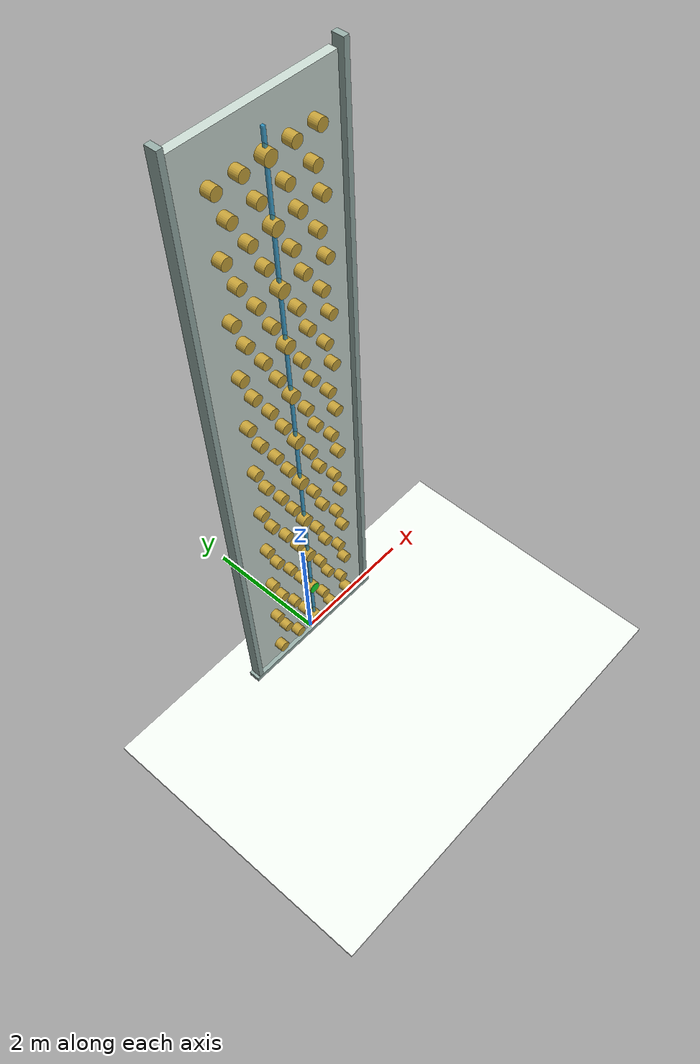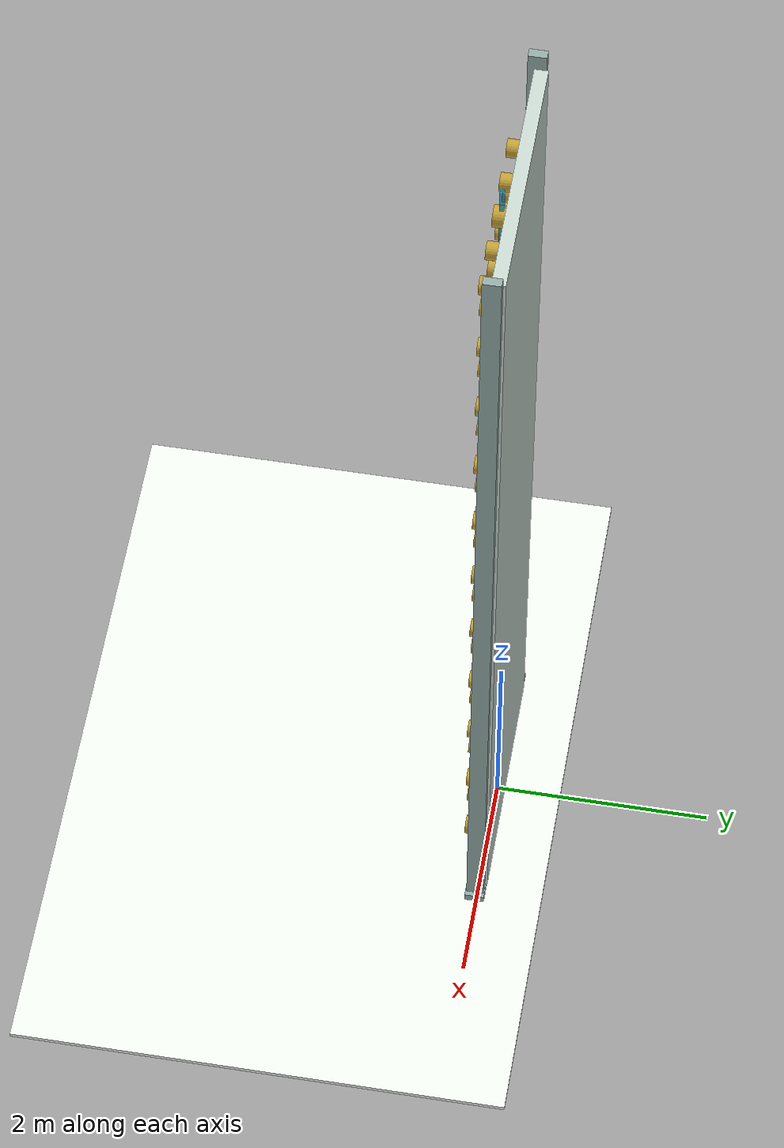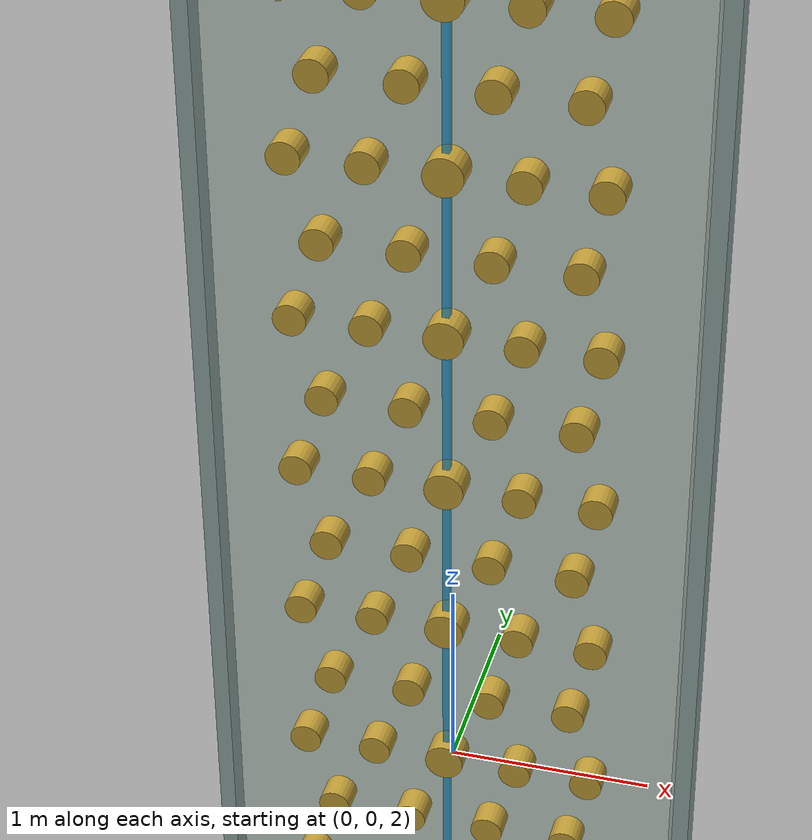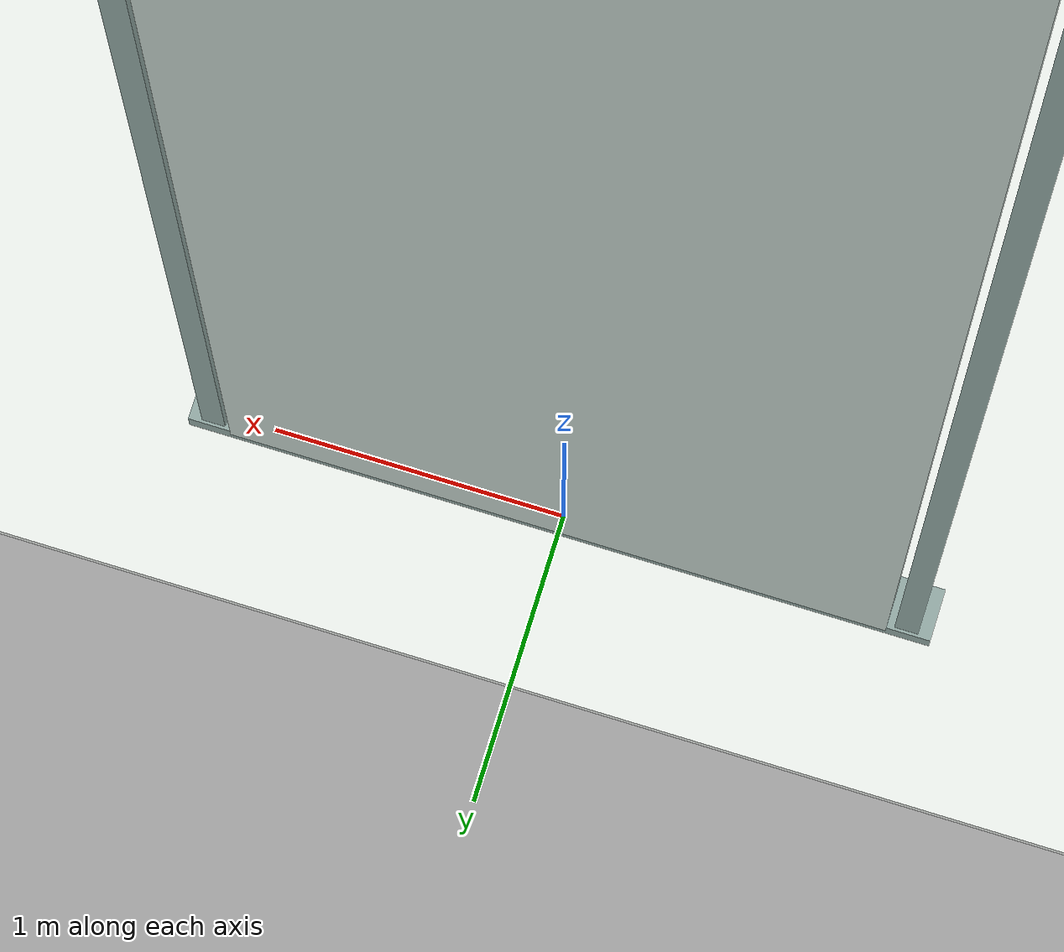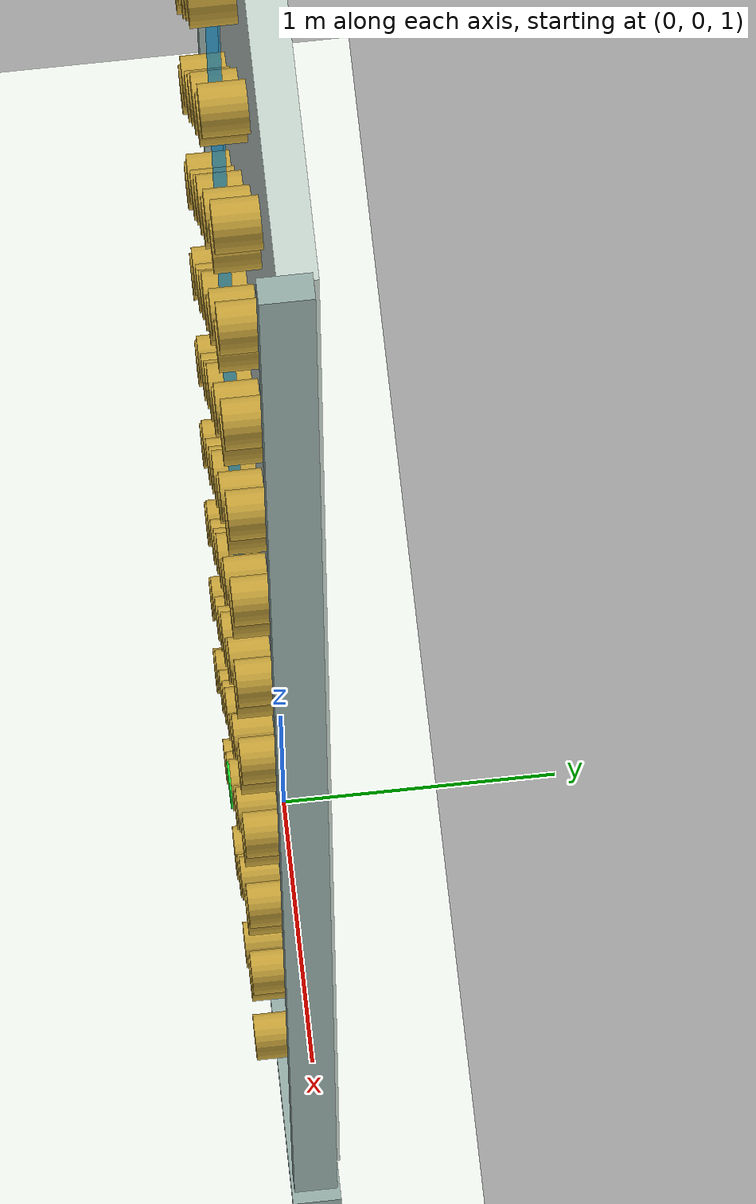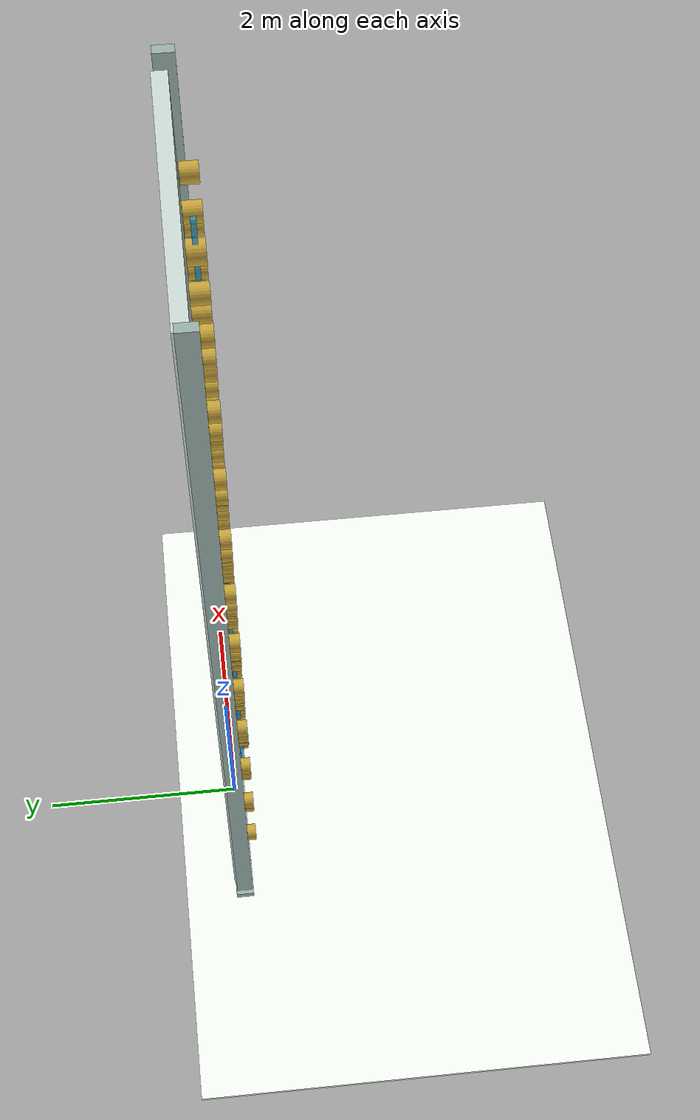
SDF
<sdf version="1.6">
 <world name="geckogrip_climber">
  <gravity>0 0 -9.81</gravity>
  <physics name="default_physics" type="ode">
   <max_step_size>0.001</max_step_size>
   <real_time_factor>1.0</real_time_factor>
   <real_time_update_rate>1000</real_time_update_rate>
   <ode>
    <solver><type>quick</type><iters>50</iters><sor>1.3</sor></solver>
    <constraints>
     <cfm>0.0</cfm>
     <erp>0.2</erp>
     <contact_max_correcting_vel>100.0</contact_max_correcting_vel>
     <contact_surface_layer>0.001</contact_surface_layer>
    </constraints>
   </ode>
  </physics>
  <scene>
   <ambient>0.72 0.76 0.73 1</ambient>
   <background>0.88 0.92 0.90 1</background>
   <shadows>true</shadows>
  </scene>
  <light name="key_light" type="directional">
   <pose>-4 -7 8 0 0.7 0.45</pose>
   <diffuse>1 1 1 1</diffuse>
   <specular>0.18 0.18 0.18 1</specular>
   <direction>0.45 0.75 -0.75</direction>
  </light>
  <model name="floor">
   <static>true</static>
   <pose>0 -1.7 0 0 0 0</pose>
   <link name="floor_link">
    <collision name="collision"><geometry><box><size>6.8 4.6 0.04</size></box></geometry></collision>
    <visual name="visual">
     <geometry><box><size>6.8 4.6 0.04</size></box></geometry>
     <material><ambient>0.94 0.96 0.94 1</ambient><diffuse>0.94 0.96 0.94 1</diffuse></material>
    </visual>
   </link>
  </model>
  <model name="climbing_wall">
   <static>true</static>
   <pose>0 0.02 4.65 0 0 0</pose>
   <link name="wall_link">
    <collision name="panel_collision"><geometry><box><size>2.25 0.12 9.1</size></box></geometry></collision>
    <visual name="panel_visual">
     <geometry><box><size>2.25 0.12 9.1</size></box></geometry>
     <material><ambient>0.78 0.84 0.81 1</ambient><diffuse>0.78 0.84 0.81 1</diffuse></material>
    </visual>
    <visual name="left_rail">
     <pose>-1.19 -0.04 0 0 0 0</pose>
     <geometry><box><size>0.08 0.16 9.35</size></box></geometry>
     <material><ambient>0.58 0.67 0.65 1</ambient><diffuse>0.58 0.67 0.65 1</diffuse></material>
    </visual>
    <visual name="right_rail">
     <pose>1.19 -0.04 0 0 0 0</pose>
     <geometry><box><size>0.08 0.16 9.35</size></box></geometry>
     <material><ambient>0.58 0.67 0.65 1</ambient><diffuse>0.58 0.67 0.65 1</diffuse></material>
    </visual>
    <visual name="base_rail">
     <pose>0 -0.04 -4.6 0 0 0</pose>
     <geometry><box><size>2.55 0.18 0.1</size></box></geometry>
     <material><ambient>0.58 0.67 0.65 1</ambient><diffuse>0.58 0.67 0.65 1</diffuse></material>
    </visual>
   </link>
  </model>
  <model name="route_and_holds">
   <static>true</static>
   <link name="holds_link">
    <visual name="route_strip">
     <pose>0 -0.12 4.7 0 0 0</pose>
     <geometry><box><size>0.035 0.04 8.55</size></box></geometry>
     <material><ambient>0.12 0.62 0.86 0.75</ambient><diffuse>0.12 0.62 0.86 0.75</diffuse></material>
    </visual>
    <visual name="hold_00">
     <pose>-0.72 -0.12 0.45 1.5708 0 0</pose>
     <geometry><cylinder><radius>0.085</radius><length>0.14</length></cylinder></geometry>
     <material><ambient>0.77 0.63 0.22 1</ambient><diffuse>0.77 0.63 0.22 1</diffuse></material>
    </visual>
    <visual name="hold_01">
     <pose>-0.36 -0.12 0.45 1.5708 0 0</pose>
     <geometry><cylinder><radius>0.085</radius><length>0.14</length></cylinder></geometry>
     <material><ambient>0.77 0.63 0.22 1</ambient><diffuse>0.77 0.63 0.22 1</diffuse></material>
    </visual>
    <visual name="hold_02">
     <pose>0.0 -0.12 0.45 1.5708 0 0</pose>
     <geometry><cylinder><radius>0.1</radius><length>0.14</length></cylinder></geometry>
     <material><ambient>0.77 0.63 0.22 1</ambient><diffuse>0.77 0.63 0.22 1</diffuse></material>
    </visual>
    <visual name="hold_03">
     <pose>0.36 -0.12 0.45 1.5708 0 0</pose>
     <geometry><cylinder><radius>0.085</radius><length>0.14</length></cylinder></geometry>
     <material><ambient>0.77 0.63 0.22 1</ambient><diffuse>0.77 0.63 0.22 1</diffuse></material>
    </visual>
    <visual name="hold_04">
     <pose>0.72 -0.12 0.45 1.5708 0 0</pose>
     <geometry><cylinder><radius>0.085</radius><length>0.14</length></cylinder></geometry>
     <material><ambient>0.77 0.63 0.22 1</ambient><diffuse>0.77 0.63 0.22 1</diffuse></material>
    </visual>
    <visual name="hold_05">
     <pose>-0.58 -0.12 0.86 1.5708 0 0</pose>
     <geometry><cylinder><radius>0.08</radius><length>0.14</length></cylinder></geometry>
     <material><ambient>0.77 0.63 0.22 1</ambient><diffuse>0.77 0.63 0.22 1</diffuse></material>
    </visual>
    <visual name="hold_06">
     <pose>-0.18 -0.12 0.86 1.5708 0 0</pose>
     <geometry><cylinder><radius>0.08</radius><length>0.14</length></cylinder></geometry>
     <material><ambient>0.77 0.63 0.22 1</ambient><diffuse>0.77 0.63 0.22 1</diffuse></material>
    </visual>
    <visual name="hold_07">
     <pose>0.22 -0.12 0.86 1.5708 0 0</pose>
     <geometry><cylinder><radius>0.08</radius><length>0.14</length></cylinder></geometry>
     <material><ambient>0.77 0.63 0.22 1</ambient><diffuse>0.77 0.63 0.22 1</diffuse></material>
    </visual>
    <visual name="hold_08">
     <pose>0.62 -0.12 0.86 1.5708 0 0</pose>
     <geometry><cylinder><radius>0.08</radius><length>0.14</length></cylinder></geometry>
     <material><ambient>0.77 0.63 0.22 1</ambient><diffuse>0.77 0.63 0.22 1</diffuse></material>
    </visual>
    <visual name="hold_09">
     <pose>-0.72 -0.12 1.27 1.5708 0 0</pose>
     <geometry><cylinder><radius>0.08</radius><length>0.14</length></cylinder></geometry>
     <material><ambient>0.77 0.63 0.22 1</ambient><diffuse>0.77 0.63 0.22 1</diffuse></material>
    </visual>
    <visual name="hold_10">
     <pose>-0.36 -0.12 1.27 1.5708 0 0</pose>
     <geometry><cylinder><radius>0.08</radius><length>0.14</length></cylinder></geometry>
     <material><ambient>0.77 0.63 0.22 1</ambient><diffuse>0.77 0.63 0.22 1</diffuse></material>
    </visual>
    <visual name="hold_11">
     <pose>0.0 -0.12 1.27 1.5708 0 0</pose>
     <geometry><cylinder><radius>0.095</radius><length>0.14</length></cylinder></geometry>
     <material><ambient>0.77 0.63 0.22 1</ambient><diffuse>0.77 0.63 0.22 1</diffuse></material>
    </visual>
    <visual name="hold_12">
     <pose>0.36 -0.12 1.27 1.5708 0 0</pose>
     <geometry><cylinder><radius>0.08</radius><length>0.14</length></cylinder></geometry>
     <material><ambient>0.77 0.63 0.22 1</ambient><diffuse>0.77 0.63 0.22 1</diffuse></material>
    </visual>
    <visual name="hold_13">
     <pose>0.72 -0.12 1.27 1.5708 0 0</pose>
     <geometry><cylinder><radius>0.08</radius><length>0.14</length></cylinder></geometry>
     <material><ambient>0.77 0.63 0.22 1</ambient><diffuse>0.77 0.63 0.22 1</diffuse></material>
    </visual>
    <visual name="hold_14">
     <pose>-0.58 -0.12 1.68 1.5708 0 0</pose>
     <geometry><cylinder><radius>0.08</radius><length>0.14</length></cylinder></geometry>
     <material><ambient>0.77 0.63 0.22 1</ambient><diffuse>0.77 0.63 0.22 1</diffuse></material>
    </visual>
    <visual name="hold_15">
     <pose>-0.18 -0.12 1.68 1.5708 0 0</pose>
     <geometry><cylinder><radius>0.08</radius><length>0.14</length></cylinder></geometry>
     <material><ambient>0.77 0.63 0.22 1</ambient><diffuse>0.77 0.63 0.22 1</diffuse></material>
    </visual>
    <visual name="hold_16">
     <pose>0.22 -0.12 1.68 1.5708 0 0</pose>
     <geometry><cylinder><radius>0.08</radius><length>0.14</length></cylinder></geometry>
     <material><ambient>0.77 0.63 0.22 1</ambient><diffuse>0.77 0.63 0.22 1</diffuse></material>
    </visual>
    <visual name="hold_17">
     <pose>0.62 -0.12 1.68 1.5708 0 0</pose>
     <geometry><cylinder><radius>0.08</radius><length>0.14</length></cylinder></geometry>
     <material><ambient>0.77 0.63 0.22 1</ambient><diffuse>0.77 0.63 0.22 1</diffuse></material>
    </visual>
    <visual name="hold_18">
     <pose>-0.72 -0.12 2.09 1.5708 0 0</pose>
     <geometry><cylinder><radius>0.08</radius><length>0.14</length></cylinder></geometry>
     <material><ambient>0.77 0.63 0.22 1</ambient><diffuse>0.77 0.63 0.22 1</diffuse></material>
    </visual>
    <visual name="hold_19">
     <pose>-0.36 -0.12 2.09 1.5708 0 0</pose>
     <geometry><cylinder><radius>0.08</radius><length>0.14</length></cylinder></geometry>
     <material><ambient>0.77 0.63 0.22 1</ambient><diffuse>0.77 0.63 0.22 1</diffuse></material>
    </visual>
    <visual name="hold_20">
     <pose>0.0 -0.12 2.09 1.5708 0 0</pose>
     <geometry><cylinder><radius>0.095</radius><length>0.14</length></cylinder></geometry>
     <material><ambient>0.77 0.63 0.22 1</ambient><diffuse>0.77 0.63 0.22 1</diffuse></material>
    </visual>
    <visual name="hold_21">
     <pose>0.36 -0.12 2.09 1.5708 0 0</pose>
     <geometry><cylinder><radius>0.08</radius><length>0.14</length></cylinder></geometry>
     <material><ambient>0.77 0.63 0.22 1</ambient><diffuse>0.77 0.63 0.22 1</diffuse></material>
    </visual>
    <visual name="hold_22">
     <pose>0.72 -0.12 2.09 1.5708 0 0</pose>
     <geometry><cylinder><radius>0.08</radius><length>0.14</length></cylinder></geometry>
     <material><ambient>0.77 0.63 0.22 1</ambient><diffuse>0.77 0.63 0.22 1</diffuse></material>
    </visual>
    <visual name="hold_23">
     <pose>-0.58 -0.12 2.50 1.5708 0 0</pose>
     <geometry><cylinder><radius>0.08</radius><length>0.14</length></cylinder></geometry>
     <material><ambient>0.77 0.63 0.22 1</ambient><diffuse>0.77 0.63 0.22 1</diffuse></material>
    </visual>
    <visual name="hold_24">
     <pose>-0.18 -0.12 2.50 1.5708 0 0</pose>
     <geometry><cylinder><radius>0.08</radius><length>0.14</length></cylinder></geometry>
     <material><ambient>0.77 0.63 0.22 1</ambient><diffuse>0.77 0.63 0.22 1</diffuse></material>
    </visual>
    <visual name="hold_25">
     <pose>0.22 -0.12 2.50 1.5708 0 0</pose>
     <geometry><cylinder><radius>0.08</radius><length>0.14</length></cylinder></geometry>
     <material><ambient>0.77 0.63 0.22 1</ambient><diffuse>0.77 0.63 0.22 1</diffuse></material>
    </visual>
    <visual name="hold_26">
     <pose>0.62 -0.12 2.50 1.5708 0 0</pose>
     <geometry><cylinder><radius>0.08</radius><length>0.14</length></cylinder></geometry>
     <material><ambient>0.77 0.63 0.22 1</ambient><diffuse>0.77 0.63 0.22 1</diffuse></material>
    </visual>
    <visual name="hold_27">
     <pose>-0.72 -0.12 2.91 1.5708 0 0</pose>
     <geometry><cylinder><radius>0.08</radius><length>0.14</length></cylinder></geometry>
     <material><ambient>0.77 0.63 0.22 1</ambient><diffuse>0.77 0.63 0.22 1</diffuse></material>
    </visual>
    <visual name="hold_28">
     <pose>-0.36 -0.12 2.91 1.5708 0 0</pose>
     <geometry><cylinder><radius>0.08</radius><length>0.14</length></cylinder></geometry>
     <material><ambient>0.77 0.63 0.22 1</ambient><diffuse>0.77 0.63 0.22 1</diffuse></material>
    </visual>
    <visual name="hold_29">
     <pose>0.0 -0.12 2.91 1.5708 0 0</pose>
     <geometry><cylinder><radius>0.095</radius><length>0.14</length></cylinder></geometry>
     <material><ambient>0.77 0.63 0.22 1</ambient><diffuse>0.77 0.63 0.22 1</diffuse></material>
    </visual>
    <visual name="hold_30">
     <pose>0.36 -0.12 2.91 1.5708 0 0</pose>
     <geometry><cylinder><radius>0.08</radius><length>0.14</length></cylinder></geometry>
     <material><ambient>0.77 0.63 0.22 1</ambient><diffuse>0.77 0.63 0.22 1</diffuse></material>
    </visual>
    <visual name="hold_31">
     <pose>0.72 -0.12 2.91 1.5708 0 0</pose>
     <geometry><cylinder><radius>0.08</radius><length>0.14</length></cylinder></geometry>
     <material><ambient>0.77 0.63 0.22 1</ambient><diffuse>0.77 0.63 0.22 1</diffuse></material>
    </visual>
    <visual name="hold_32">
     <pose>-0.58 -0.12 3.32 1.5708 0 0</pose>
     <geometry><cylinder><radius>0.08</radius><length>0.14</length></cylinder></geometry>
     <material><ambient>0.77 0.63 0.22 1</ambient><diffuse>0.77 0.63 0.22 1</diffuse></material>
    </visual>
    <visual name="hold_33">
     <pose>-0.18 -0.12 3.32 1.5708 0 0</pose>
     <geometry><cylinder><radius>0.08</radius><length>0.14</length></cylinder></geometry>
     <material><ambient>0.77 0.63 0.22 1</ambient><diffuse>0.77 0.63 0.22 1</diffuse></material>
    </visual>
    <visual name="hold_34">
     <pose>0.22 -0.12 3.32 1.5708 0 0</pose>
     <geometry><cylinder><radius>0.08</radius><length>0.14</length></cylinder></geometry>
     <material><ambient>0.77 0.63 0.22 1</ambient><diffuse>0.77 0.63 0.22 1</diffuse></material>
    </visual>
    <visual name="hold_35">
     <pose>0.62 -0.12 3.32 1.5708 0 0</pose>
     <geometry><cylinder><radius>0.08</radius><length>0.14</length></cylinder></geometry>
     <material><ambient>0.77 0.63 0.22 1</ambient><diffuse>0.77 0.63 0.22 1</diffuse></material>
    </visual>
    <visual name="hold_36">
     <pose>-0.72 -0.12 3.73 1.5708 0 0</pose>
     <geometry><cylinder><radius>0.08</radius><length>0.14</length></cylinder></geometry>
     <material><ambient>0.77 0.63 0.22 1</ambient><diffuse>0.77 0.63 0.22 1</diffuse></material>
    </visual>
    <visual name="hold_37">
     <pose>-0.36 -0.12 3.73 1.5708 0 0</pose>
     <geometry><cylinder><radius>0.08</radius><length>0.14</length></cylinder></geometry>
     <material><ambient>0.77 0.63 0.22 1</ambient><diffuse>0.77 0.63 0.22 1</diffuse></material>
    </visual>
    <visual name="hold_38">
     <pose>0.0 -0.12 3.73 1.5708 0 0</pose>
     <geometry><cylinder><radius>0.095</radius><length>0.14</length></cylinder></geometry>
     <material><ambient>0.77 0.63 0.22 1</ambient><diffuse>0.77 0.63 0.22 1</diffuse></material>
    </visual>
    <visual name="hold_39">
     <pose>0.36 -0.12 3.73 1.5708 0 0</pose>
     <geometry><cylinder><radius>0.08</radius><length>0.14</length></cylinder></geometry>
     <material><ambient>0.77 0.63 0.22 1</ambient><diffuse>0.77 0.63 0.22 1</diffuse></material>
    </visual>
    <visual name="hold_40">
     <pose>0.72 -0.12 3.73 1.5708 0 0</pose>
     <geometry><cylinder><radius>0.08</radius><length>0.14</length></cylinder></geometry>
     <material><ambient>0.77 0.63 0.22 1</ambient><diffuse>0.77 0.63 0.22 1</diffuse></material>
    </visual>
    <visual name="hold_41">
     <pose>-0.58 -0.12 4.14 1.5708 0 0</pose>
     <geometry><cylinder><radius>0.08</radius><length>0.14</length></cylinder></geometry>
     <material><ambient>0.77 0.63 0.22 1</ambient><diffuse>0.77 0.63 0.22 1</diffuse></material>
    </visual>
    <visual name="hold_42">
     <pose>-0.18 -0.12 4.14 1.5708 0 0</pose>
     <geometry><cylinder><radius>0.08</radius><length>0.14</length></cylinder></geometry>
     <material><ambient>0.77 0.63 0.22 1</ambient><diffuse>0.77 0.63 0.22 1</diffuse></material>
    </visual>
    <visual name="hold_43">
     <pose>0.22 -0.12 4.14 1.5708 0 0</pose>
     <geometry><cylinder><radius>0.08</radius><length>0.14</length></cylinder></geometry>
     <material><ambient>0.77 0.63 0.22 1</ambient><diffuse>0.77 0.63 0.22 1</diffuse></material>
    </visual>
    <visual name="hold_44">
     <pose>0.62 -0.12 4.14 1.5708 0 0</pose>
     <geometry><cylinder><radius>0.08</radius><length>0.14</length></cylinder></geometry>
     <material><ambient>0.77 0.63 0.22 1</ambient><diffuse>0.77 0.63 0.22 1</diffuse></material>
    </visual>
    <visual name="hold_45">
     <pose>-0.72 -0.12 4.55 1.5708 0 0</pose>
     <geometry><cylinder><radius>0.08</radius><length>0.14</length></cylinder></geometry>
     <material><ambient>0.77 0.63 0.22 1</ambient><diffuse>0.77 0.63 0.22 1</diffuse></material>
    </visual>
    <visual name="hold_46">
     <pose>-0.36 -0.12 4.55 1.5708 0 0</pose>
     <geometry><cylinder><radius>0.08</radius><length>0.14</length></cylinder></geometry>
     <material><ambient>0.77 0.63 0.22 1</ambient><diffuse>0.77 0.63 0.22 1</diffuse></material>
    </visual>
    <visual name="hold_47">
     <pose>0.0 -0.12 4.55 1.5708 0 0</pose>
     <geometry><cylinder><radius>0.095</radius><length>0.14</length></cylinder></geometry>
     <material><ambient>0.77 0.63 0.22 1</ambient><diffuse>0.77 0.63 0.22 1</diffuse></material>
    </visual>
    <visual name="hold_48">
     <pose>0.36 -0.12 4.55 1.5708 0 0</pose>
     <geometry><cylinder><radius>0.08</radius><length>0.14</length></cylinder></geometry>
     <material><ambient>0.77 0.63 0.22 1</ambient><diffuse>0.77 0.63 0.22 1</diffuse></material>
    </visual>
    <visual name="hold_49">
     <pose>0.72 -0.12 4.55 1.5708 0 0</pose>
     <geometry><cylinder><radius>0.08</radius><length>0.14</length></cylinder></geometry>
     <material><ambient>0.77 0.63 0.22 1</ambient><diffuse>0.77 0.63 0.22 1</diffuse></material>
    </visual>
    <visual name="hold_50">
     <pose>-0.58 -0.12 4.96 1.5708 0 0</pose>
     <geometry><cylinder><radius>0.08</radius><length>0.14</length></cylinder></geometry>
     <material><ambient>0.77 0.63 0.22 1</ambient><diffuse>0.77 0.63 0.22 1</diffuse></material>
    </visual>
    <visual name="hold_51">
     <pose>-0.18 -0.12 4.96 1.5708 0 0</pose>
     <geometry><cylinder><radius>0.08</radius><length>0.14</length></cylinder></geometry>
     <material><ambient>0.77 0.63 0.22 1</ambient><diffuse>0.77 0.63 0.22 1</diffuse></material>
    </visual>
    <visual name="hold_52">
     <pose>0.22 -0.12 4.96 1.5708 0 0</pose>
     <geometry><cylinder><radius>0.08</radius><length>0.14</length></cylinder></geometry>
     <material><ambient>0.77 0.63 0.22 1</ambient><diffuse>0.77 0.63 0.22 1</diffuse></material>
    </visual>
    <visual name="hold_53">
     <pose>0.62 -0.12 4.96 1.5708 0 0</pose>
     <geometry><cylinder><radius>0.08</radius><length>0.14</length></cylinder></geometry>
     <material><ambient>0.77 0.63 0.22 1</ambient><diffuse>0.77 0.63 0.22 1</diffuse></material>
    </visual>
    <visual name="hold_54">
     <pose>-0.72 -0.12 5.37 1.5708 0 0</pose>
     <geometry><cylinder><radius>0.08</radius><length>0.14</length></cylinder></geometry>
     <material><ambient>0.77 0.63 0.22 1</ambient><diffuse>0.77 0.63 0.22 1</diffuse></material>
    </visual>
    <visual name="hold_55">
     <pose>-0.36 -0.12 5.37 1.5708 0 0</pose>
     <geometry><cylinder><radius>0.08</radius><length>0.14</length></cylinder></geometry>
     <material><ambient>0.77 0.63 0.22 1</ambient><diffuse>0.77 0.63 0.22 1</diffuse></material>
    </visual>
    <visual name="hold_56">
     <pose>0.0 -0.12 5.37 1.5708 0 0</pose>
     <geometry><cylinder><radius>0.095</radius><length>0.14</length></cylinder></geometry>
     <material><ambient>0.77 0.63 0.22 1</ambient><diffuse>0.77 0.63 0.22 1</diffuse></material>
    </visual>
    <visual name="hold_57">
     <pose>0.36 -0.12 5.37 1.5708 0 0</pose>
     <geometry><cylinder><radius>0.08</radius><length>0.14</length></cylinder></geometry>
     <material><ambient>0.77 0.63 0.22 1</ambient><diffuse>0.77 0.63 0.22 1</diffuse></material>
    </visual>
    <visual name="hold_58">
     <pose>0.72 -0.12 5.37 1.5708 0 0</pose>
     <geometry><cylinder><radius>0.08</radius><length>0.14</length></cylinder></geometry>
     <material><ambient>0.77 0.63 0.22 1</ambient><diffuse>0.77 0.63 0.22 1</diffuse></material>
    </visual>
    <visual name="hold_59">
     <pose>-0.58 -0.12 5.78 1.5708 0 0</pose>
     <geometry><cylinder><radius>0.08</radius><length>0.14</length></cylinder></geometry>
     <material><ambient>0.77 0.63 0.22 1</ambient><diffuse>0.77 0.63 0.22 1</diffuse></material>
    </visual>
    <visual name="hold_60">
     <pose>-0.18 -0.12 5.78 1.5708 0 0</pose>
     <geometry><cylinder><radius>0.08</radius><length>0.14</length></cylinder></geometry>
     <material><ambient>0.77 0.63 0.22 1</ambient><diffuse>0.77 0.63 0.22 1</diffuse></material>
    </visual>
    <visual name="hold_61">
     <pose>0.22 -0.12 5.78 1.5708 0 0</pose>
     <geometry><cylinder><radius>0.08</radius><length>0.14</length></cylinder></geometry>
     <material><ambient>0.77 0.63 0.22 1</ambient><diffuse>0.77 0.63 0.22 1</diffuse></material>
    </visual>
    <visual name="hold_62">
     <pose>0.62 -0.12 5.78 1.5708 0 0</pose>
     <geometry><cylinder><radius>0.08</radius><length>0.14</length></cylinder></geometry>
     <material><ambient>0.77 0.63 0.22 1</ambient><diffuse>0.77 0.63 0.22 1</diffuse></material>
    </visual>
    <visual name="hold_63">
     <pose>-0.72 -0.12 6.19 1.5708 0 0</pose>
     <geometry><cylinder><radius>0.08</radius><length>0.14</length></cylinder></geometry>
     <material><ambient>0.77 0.63 0.22 1</ambient><diffuse>0.77 0.63 0.22 1</diffuse></material>
    </visual>
    <visual name="hold_64">
     <pose>-0.36 -0.12 6.19 1.5708 0 0</pose>
     <geometry><cylinder><radius>0.08</radius><length>0.14</length></cylinder></geometry>
     <material><ambient>0.77 0.63 0.22 1</ambient><diffuse>0.77 0.63 0.22 1</diffuse></material>
    </visual>
    <visual name="hold_65">
     <pose>0.0 -0.12 6.19 1.5708 0 0</pose>
     <geometry><cylinder><radius>0.095</radius><length>0.14</length></cylinder></geometry>
     <material><ambient>0.77 0.63 0.22 1</ambient><diffuse>0.77 0.63 0.22 1</diffuse></material>
    </visual>
    <visual name="hold_66">
     <pose>0.36 -0.12 6.19 1.5708 0 0</pose>
     <geometry><cylinder><radius>0.08</radius><length>0.14</length></cylinder></geometry>
     <material><ambient>0.77 0.63 0.22 1</ambient><diffuse>0.77 0.63 0.22 1</diffuse></material>
    </visual>
    <visual name="hold_67">
     <pose>0.72 -0.12 6.19 1.5708 0 0</pose>
     <geometry><cylinder><radius>0.08</radius><length>0.14</length></cylinder></geometry>
     <material><ambient>0.77 0.63 0.22 1</ambient><diffuse>0.77 0.63 0.22 1</diffuse></material>
    </visual>
    <visual name="hold_68">
     <pose>-0.58 -0.12 6.60 1.5708 0 0</pose>
     <geometry><cylinder><radius>0.08</radius><length>0.14</length></cylinder></geometry>
     <material><ambient>0.77 0.63 0.22 1</ambient><diffuse>0.77 0.63 0.22 1</diffuse></material>
    </visual>
    <visual name="hold_69">
     <pose>-0.18 -0.12 6.60 1.5708 0 0</pose>
     <geometry><cylinder><radius>0.08</radius><length>0.14</length></cylinder></geometry>
     <material><ambient>0.77 0.63 0.22 1</ambient><diffuse>0.77 0.63 0.22 1</diffuse></material>
    </visual>
    <visual name="hold_70">
     <pose>0.22 -0.12 6.60 1.5708 0 0</pose>
     <geometry><cylinder><radius>0.08</radius><length>0.14</length></cylinder></geometry>
     <material><ambient>0.77 0.63 0.22 1</ambient><diffuse>0.77 0.63 0.22 1</diffuse></material>
    </visual>
    <visual name="hold_71">
     <pose>0.62 -0.12 6.60 1.5708 0 0</pose>
     <geometry><cylinder><radius>0.08</radius><length>0.14</length></cylinder></geometry>
     <material><ambient>0.77 0.63 0.22 1</ambient><diffuse>0.77 0.63 0.22 1</diffuse></material>
    </visual>
    <visual name="hold_72">
     <pose>-0.72 -0.12 7.01 1.5708 0 0</pose>
     <geometry><cylinder><radius>0.08</radius><length>0.14</length></cylinder></geometry>
     <material><ambient>0.77 0.63 0.22 1</ambient><diffuse>0.77 0.63 0.22 1</diffuse></material>
    </visual>
    <visual name="hold_73">
     <pose>-0.36 -0.12 7.01 1.5708 0 0</pose>
     <geometry><cylinder><radius>0.08</radius><length>0.14</length></cylinder></geometry>
     <material><ambient>0.77 0.63 0.22 1</ambient><diffuse>0.77 0.63 0.22 1</diffuse></material>
    </visual>
    <visual name="hold_74">
     <pose>0.0 -0.12 7.01 1.5708 0 0</pose>
     <geometry><cylinder><radius>0.095</radius><length>0.14</length></cylinder></geometry>
     <material><ambient>0.77 0.63 0.22 1</ambient><diffuse>0.77 0.63 0.22 1</diffuse></material>
    </visual>
    <visual name="hold_75">
     <pose>0.36 -0.12 7.01 1.5708 0 0</pose>
     <geometry><cylinder><radius>0.08</radius><length>0.14</length></cylinder></geometry>
     <material><ambient>0.77 0.63 0.22 1</ambient><diffuse>0.77 0.63 0.22 1</diffuse></material>
    </visual>
    <visual name="hold_76">
     <pose>0.72 -0.12 7.01 1.5708 0 0</pose>
     <geometry><cylinder><radius>0.08</radius><length>0.14</length></cylinder></geometry>
     <material><ambient>0.77 0.63 0.22 1</ambient><diffuse>0.77 0.63 0.22 1</diffuse></material>
    </visual>
    <visual name="hold_77">
     <pose>-0.58 -0.12 7.42 1.5708 0 0</pose>
     <geometry><cylinder><radius>0.08</radius><length>0.14</length></cylinder></geometry>
     <material><ambient>0.77 0.63 0.22 1</ambient><diffuse>0.77 0.63 0.22 1</diffuse></material>
    </visual>
    <visual name="hold_78">
     <pose>-0.18 -0.12 7.42 1.5708 0 0</pose>
     <geometry><cylinder><radius>0.08</radius><length>0.14</length></cylinder></geometry>
     <material><ambient>0.77 0.63 0.22 1</ambient><diffuse>0.77 0.63 0.22 1</diffuse></material>
    </visual>
    <visual name="hold_79">
     <pose>0.22 -0.12 7.42 1.5708 0 0</pose>
     <geometry><cylinder><radius>0.08</radius><length>0.14</length></cylinder></geometry>
     <material><ambient>0.77 0.63 0.22 1</ambient><diffuse>0.77 0.63 0.22 1</diffuse></material>
    </visual>
    <visual name="hold_80">
     <pose>0.62 -0.12 7.42 1.5708 0 0</pose>
     <geometry><cylinder><radius>0.08</radius><length>0.14</length></cylinder></geometry>
     <material><ambient>0.77 0.63 0.22 1</ambient><diffuse>0.77 0.63 0.22 1</diffuse></material>
    </visual>
    <visual name="hold_81">
     <pose>-0.72 -0.12 7.83 1.5708 0 0</pose>
     <geometry><cylinder><radius>0.08</radius><length>0.14</length></cylinder></geometry>
     <material><ambient>0.77 0.63 0.22 1</ambient><diffuse>0.77 0.63 0.22 1</diffuse></material>
    </visual>
    <visual name="hold_82">
     <pose>-0.36 -0.12 7.83 1.5708 0 0</pose>
     <geometry><cylinder><radius>0.08</radius><length>0.14</length></cylinder></geometry>
     <material><ambient>0.77 0.63 0.22 1</ambient><diffuse>0.77 0.63 0.22 1</diffuse></material>
    </visual>
    <visual name="hold_83">
     <pose>0.0 -0.12 7.83 1.5708 0 0</pose>
     <geometry><cylinder><radius>0.095</radius><length>0.14</length></cylinder></geometry>
     <material><ambient>0.77 0.63 0.22 1</ambient><diffuse>0.77 0.63 0.22 1</diffuse></material>
    </visual>
    <visual name="hold_84">
     <pose>0.36 -0.12 7.83 1.5708 0 0</pose>
     <geometry><cylinder><radius>0.08</radius><length>0.14</length></cylinder></geometry>
     <material><ambient>0.77 0.63 0.22 1</ambient><diffuse>0.77 0.63 0.22 1</diffuse></material>
    </visual>
    <visual name="hold_85">
     <pose>0.72 -0.12 7.83 1.5708 0 0</pose>
     <geometry><cylinder><radius>0.08</radius><length>0.14</length></cylinder></geometry>
     <material><ambient>0.77 0.63 0.22 1</ambient><diffuse>0.77 0.63 0.22 1</diffuse></material>
    </visual>
    <visual name="hold_86">
     <pose>-0.58 -0.12 8.24 1.5708 0 0</pose>
     <geometry><cylinder><radius>0.08</radius><length>0.14</length></cylinder></geometry>
     <material><ambient>0.77 0.63 0.22 1</ambient><diffuse>0.77 0.63 0.22 1</diffuse></material>
    </visual>
    <visual name="hold_87">
     <pose>-0.18 -0.12 8.24 1.5708 0 0</pose>
     <geometry><cylinder><radius>0.08</radius><length>0.14</length></cylinder></geometry>
     <material><ambient>0.77 0.63 0.22 1</ambient><diffuse>0.77 0.63 0.22 1</diffuse></material>
    </visual>
    <visual name="hold_88">
     <pose>0.22 -0.12 8.24 1.5708 0 0</pose>
     <geometry><cylinder><radius>0.08</radius><length>0.14</length></cylinder></geometry>
     <material><ambient>0.77 0.63 0.22 1</ambient><diffuse>0.77 0.63 0.22 1</diffuse></material>
    </visual>
    <visual name="hold_89">
     <pose>0.62 -0.12 8.24 1.5708 0 0</pose>
     <geometry><cylinder><radius>0.08</radius><length>0.14</length></cylinder></geometry>
     <material><ambient>0.77 0.63 0.22 1</ambient><diffuse>0.77 0.63 0.22 1</diffuse></material>
    </visual>
    <visual name="hold_90">
     <pose>-0.72 -0.12 8.65 1.5708 0 0</pose>
     <geometry><cylinder><radius>0.08</radius><length>0.14</length></cylinder></geometry>
     <material><ambient>0.77 0.63 0.22 1</ambient><diffuse>0.77 0.63 0.22 1</diffuse></material>
    </visual>
    <visual name="hold_91">
     <pose>-0.36 -0.12 8.65 1.5708 0 0</pose>
     <geometry><cylinder><radius>0.08</radius><length>0.14</length></cylinder></geometry>
     <material><ambient>0.77 0.63 0.22 1</ambient><diffuse>0.77 0.63 0.22 1</diffuse></material>
    </visual>
    <visual name="hold_92">
     <pose>0.0 -0.12 8.65 1.5708 0 0</pose>
     <geometry><cylinder><radius>0.095</radius><length>0.14</length></cylinder></geometry>
     <material><ambient>0.77 0.63 0.22 1</ambient><diffuse>0.77 0.63 0.22 1</diffuse></material>
    </visual>
    <visual name="hold_93">
     <pose>0.36 -0.12 8.65 1.5708 0 0</pose>
     <geometry><cylinder><radius>0.08</radius><length>0.14</length></cylinder></geometry>
     <material><ambient>0.77 0.63 0.22 1</ambient><diffuse>0.77 0.63 0.22 1</diffuse></material>
    </visual>
    <visual name="hold_94">
     <pose>0.72 -0.12 8.65 1.5708 0 0</pose>
     <geometry><cylinder><radius>0.08</radius><length>0.14</length></cylinder></geometry>
     <material><ambient>0.77 0.63 0.22 1</ambient><diffuse>0.77 0.63 0.22 1</diffuse></material>
    </visual>
   </link>
  </model>
  <model name="predicted_hold_marker">
   <static>true</static>
   <pose>0 -0.12 1.27 1.5708 0 0</pose>
   <link name="marker_link">
    <visual name="green_predicted_hold">
     <geometry><cylinder><radius>0.088</radius><length>0.155</length></cylinder></geometry>
     <material>
      <ambient>0.08 0.88 0.18 1</ambient>
      <diffuse>0.08 0.88 0.18 1</diffuse>
      <emissive>0.02 0.32 0.05 1</emissive>
      <specular>0.20 0.20 0.20 1</specular>
     </material>
    </visual>
   </link>
  </model>
  <plugin name="geckogrip_climb_animator" filename="libgeckogrip_climb_animator.so"/>
 </world>
</sdf>
